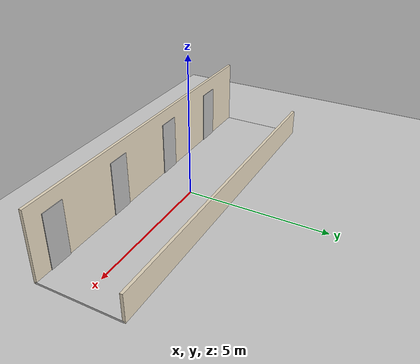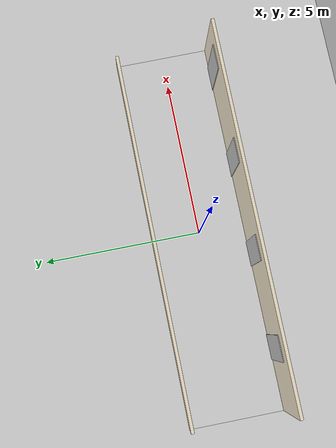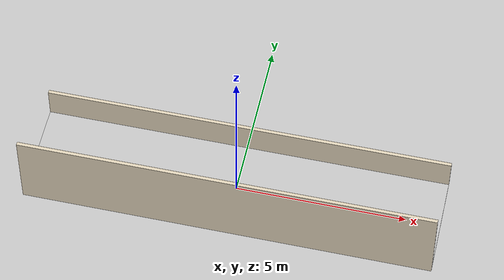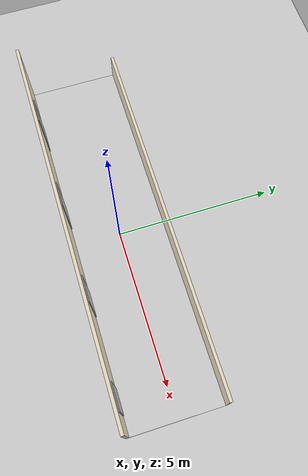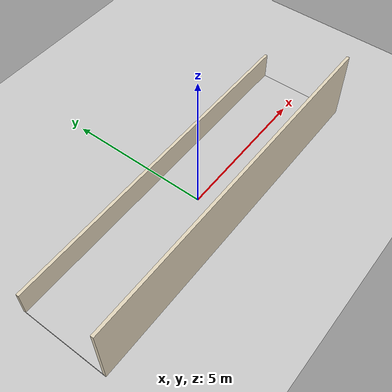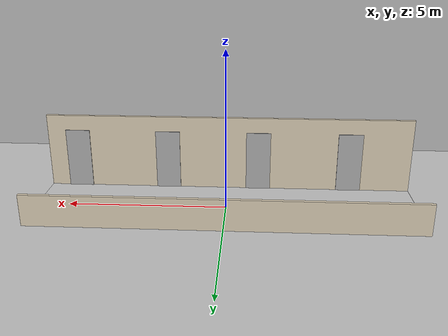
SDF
<?xml version="1.0" ?>

<sdf version="1.6">

  <world name="corridor_world">

    <!-- SUN -->

    <include>
      <uri>model://sun</uri>
    </include>

    <!-- GROUND -->

    <include>
      <uri>model://ground_plane</uri>
    </include>

    <!-- FLOOR -->

    <model name="corridor_floor">

      <static>true</static>

      <link name="link">

        <collision name="collision">
          <geometry>
            <box>
              <size>12 3 0.1</size>
            </box>
          </geometry>
        </collision>

        <visual name="visual">
          <geometry>
            <box>
              <size>12 3 0.1</size>
            </box>
          </geometry>

          <material>
            <ambient>0.8 0.8 0.8 1</ambient>
          </material>

        </visual>

        <pose>0 0 0 0 0 0</pose>

      </link>

    </model>

    <!-- RIGHT WALL -->

    <model name="right_wall">

      <static>true</static>

      <link name="link">

        <collision name="collision">
          <geometry>
            <box>
              <size>12 0.1 2.5</size>
            </box>
          </geometry>
        </collision>

        <visual name="visual">
          <geometry>
            <box>
              <size>12 0.1 2.5</size>
            </box>
          </geometry>

          <material>
            <ambient>0.9 0.85 0.75 1</ambient>
          </material>

        </visual>

        <pose>0 -1.5 1.25 0 0 0</pose>

      </link>

    </model>

    <!-- LEFT SIDE LOW WALL -->

    <model name="left_wall">

      <static>true</static>

      <link name="link">

        <collision name="collision">
          <geometry>
            <box>
              <size>12 0.1 1.0</size>
            </box>
          </geometry>
        </collision>

        <visual name="visual">
          <geometry>
            <box>
              <size>12 0.1 1.0</size>
            </box>
          </geometry>

          <material>
            <ambient>0.9 0.85 0.75 1</ambient>
          </material>

        </visual>

        <pose>0 1.5 0.5 0 0 0</pose>

      </link>

    </model>

    <!-- LAB DOORS -->

    <model name="door1">
      <static>true</static>
      <pose>-4 -1.45 1 0 0 0</pose>

      <link name="link">
        <visual name="visual">
          <geometry>
            <box>
              <size>0.8 0.05 2</size>
            </box>
          </geometry>
        </visual>
      </link>
    </model>

    <model name="door2">
      <static>true</static>
      <pose>-1 -1.45 1 0 0 0</pose>

      <link name="link">
        <visual name="visual">
          <geometry>
            <box>
              <size>0.8 0.05 2</size>
            </box>
          </geometry>
        </visual>
      </link>
    </model>

    <model name="door3">
      <static>true</static>
      <pose>2 -1.45 1 0 0 0</pose>

      <link name="link">
        <visual name="visual">
          <geometry>
            <box>
              <size>0.8 0.05 2</size>
            </box>
          </geometry>
        </visual>
      </link>
    </model>

    <model name="door4">
      <static>true</static>
      <pose>5 -1.45 1 0 0 0</pose>

      <link name="link">
        <visual name="visual">
          <geometry>
            <box>
              <size>0.8 0.05 2</size>
            </box>
          </geometry>
        </visual>
      </link>
    </model>

  </world>

</sdf>
